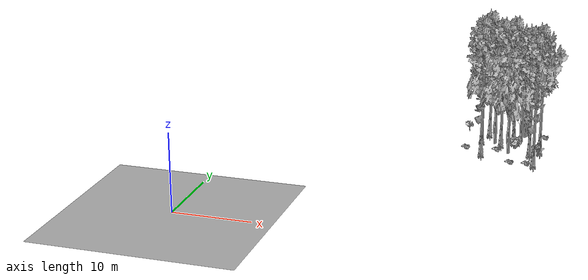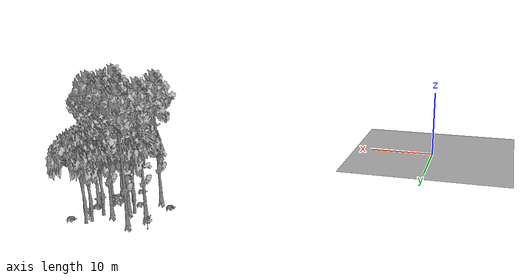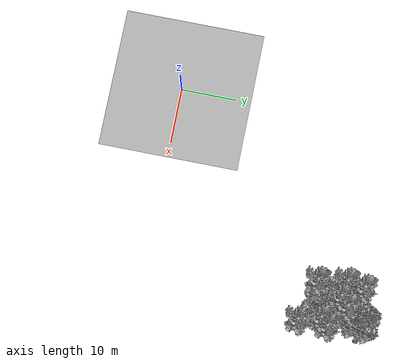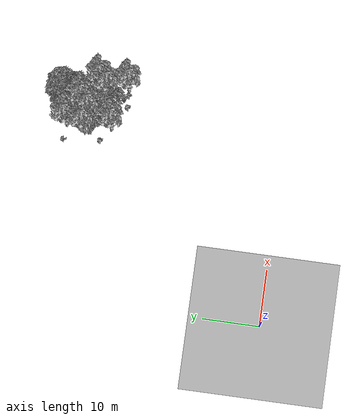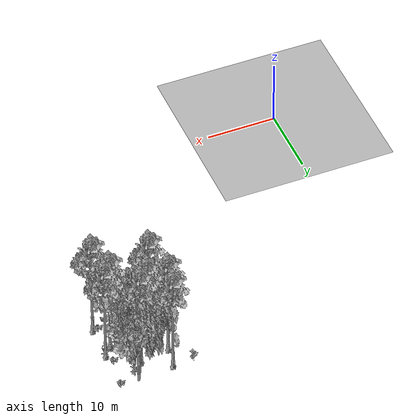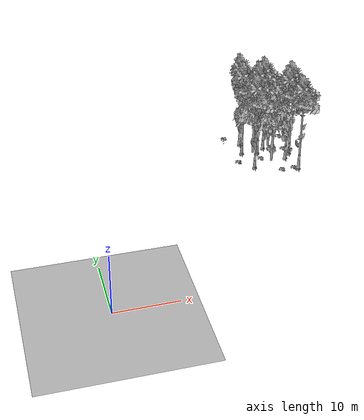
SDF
<sdf version="1.7">
 <world name="default">
  <model name="ground_plane">
   <static>1</static>
   <link name="link">
    <collision name="collision">
     <pose>-50 0 0 0 -0 0</pose>
     <geometry><plane><normal>0 0 1</normal><size>80 80</size></plane></geometry>
     <surface><contact><ode><min_depth>0.01</min_depth><max_vel>0</max_vel></ode></contact></surface>
    </collision>
    <visual name="grass">
     <cast_shadows>0</cast_shadows>
     <geometry>
      <mesh>
       <scale>0.46714285714285714 0.46714285714285714 0.1</scale>
       <uri>file://grass_plane/meshes/grass_plane.dae</uri>
      </mesh>
     </geometry>
    </visual>
   </link>
  </model>
  <model name="Tree 87">
   <static>1</static>
   <pose>30.368040918640745 35.34969607959698 0 1.57079 -0 0</pose>
   <link name="link">
    <collision name="collision">
     <geometry><mesh><scale>3.5 5 3.5</scale><uri>model://tree_9/meshes/tree_9.obj</uri></mesh></geometry>
    </collision>
    <visual name="visual">
     <geometry><mesh><scale>3.5 5 3.5</scale><uri>model://tree_9/meshes/tree_9.obj</uri></mesh></geometry>
    </visual>
   </link>
  </model>
  <model name="Tree 98">
   <static>1</static>
   <pose>38.4714458404368 33.38023276302559 0 1.57079 -0 0</pose>
   <link name="link">
    <collision name="collision">
     <geometry><mesh><scale>3.5 5 3.5</scale><uri>model://tree_9/meshes/tree_9.obj</uri></mesh></geometry>
    </collision>
    <visual name="visual">
     <geometry><mesh><scale>3.5 5 3.5</scale><uri>model://tree_9/meshes/tree_9.obj</uri></mesh></geometry>
    </visual>
   </link>
  </model>
  <model name="Tree 213">
   <static>1</static>
   <pose>35.489186056349425 36.38401457643232 0 1.57079 -0 0</pose>
   <link name="link">
    <collision name="collision">
     <geometry><mesh><scale>3.5 5 3.5</scale><uri>model://tree_2/meshes/tree_2.obj</uri></mesh></geometry>
    </collision>
    <visual name="visual">
     <geometry><mesh><scale>3.5 5 3.5</scale><uri>model://tree_2/meshes/tree_2.obj</uri></mesh></geometry>
    </visual>
   </link>
  </model>
  <model name="Tree 239">
   <static>1</static>
   <pose>35.95722039083002 39.13831803263909 0 1.57079 -0 0</pose>
   <link name="link">
    <collision name="collision">
     <geometry><mesh><scale>3.5 5 3.5</scale><uri>model://tree_2/meshes/tree_2.obj</uri></mesh></geometry>
    </collision>
    <visual name="visual">
     <geometry><mesh><scale>3.5 5 3.5</scale><uri>model://tree_2/meshes/tree_2.obj</uri></mesh></geometry>
    </visual>
   </link>
  </model>
  <model name="Tree 249">
   <static>1</static>
   <pose>33.06455442588593 34.78855987814933 0 1.57079 -0 0</pose>
   <link name="link">
    <collision name="collision">
     <geometry><mesh><scale>3.5 5 3.5</scale><uri>model://tree_9/meshes/tree_9.obj</uri></mesh></geometry>
    </collision>
    <visual name="visual">
     <geometry><mesh><scale>3.5 5 3.5</scale><uri>model://tree_9/meshes/tree_9.obj</uri></mesh></geometry>
    </visual>
   </link>
  </model>
  <model name="Tree 257">
   <static>1</static>
   <pose>35.65585210140577 38.43721837925531 0 1.57079 -0 0</pose>
   <link name="link">
    <collision name="collision">
     <geometry><mesh><scale>3.5 5 3.5</scale><uri>model://tree_2/meshes/tree_2.obj</uri></mesh></geometry>
    </collision>
    <visual name="visual">
     <geometry><mesh><scale>3.5 5 3.5</scale><uri>model://tree_2/meshes/tree_2.obj</uri></mesh></geometry>
    </visual>
   </link>
  </model>
  <model name="Tree 302">
   <static>1</static>
   <pose>38.35449542266106 28.356233038755704 0 1.57079 -0 0</pose>
   <link name="link">
    <collision name="collision">
     <geometry><mesh><scale>3.5 5 3.5</scale><uri>model://tree_9/meshes/tree_9.obj</uri></mesh></geometry>
    </collision>
    <visual name="visual">
     <geometry><mesh><scale>3.5 5 3.5</scale><uri>model://tree_9/meshes/tree_9.obj</uri></mesh></geometry>
    </visual>
   </link>
  </model>
  <model name="Tree 338">
   <static>1</static>
   <pose>34.55332855661844 36.17476984507678 0 1.57079 -0 0</pose>
   <link name="link">
    <collision name="collision">
     <geometry><mesh><scale>3.5 5 3.5</scale><uri>model://tree_9/meshes/tree_9.obj</uri></mesh></geometry>
    </collision>
    <visual name="visual">
     <geometry><mesh><scale>3.5 5 3.5</scale><uri>model://tree_9/meshes/tree_9.obj</uri></mesh></geometry>
    </visual>
   </link>
  </model>
  <model name="Tree 351">
   <static>1</static>
   <pose>30.918724511556277 38.40200254358794 0 1.57079 -0 0</pose>
   <link name="link">
    <collision name="collision">
     <geometry><mesh><scale>3.5 5 3.5</scale><uri>model://tree_9/meshes/tree_9.obj</uri></mesh></geometry>
    </collision>
    <visual name="visual">
     <geometry><mesh><scale>3.5 5 3.5</scale><uri>model://tree_9/meshes/tree_9.obj</uri></mesh></geometry>
    </visual>
   </link>
  </model>
  <model name="Tree 431">
   <static>1</static>
   <pose>32.17540235979949 34.827665643565936 0 1.57079 -0 0</pose>
   <link name="link">
    <collision name="collision">
     <geometry><mesh><scale>3.5 5 3.5</scale><uri>model://tree_2/meshes/tree_2.obj</uri></mesh></geometry>
    </collision>
    <visual name="visual">
     <geometry><mesh><scale>3.5 5 3.5</scale><uri>model://tree_2/meshes/tree_2.obj</uri></mesh></geometry>
    </visual>
   </link>
  </model>
  <model name="Tree 460">
   <static>1</static>
   <pose>34.48433794181234 31.56748242356491 0 1.57079 -0 0</pose>
   <link name="link">
    <collision name="collision">
     <geometry><mesh><scale>3.5 5 3.5</scale><uri>model://tree_2/meshes/tree_2.obj</uri></mesh></geometry>
    </collision>
    <visual name="visual">
     <geometry><mesh><scale>3.5 5 3.5</scale><uri>model://tree_2/meshes/tree_2.obj</uri></mesh></geometry>
    </visual>
   </link>
  </model>
  <model name="Tree 543">
   <static>1</static>
   <pose>31.146203858330622 30.483840288132896 0 1.57079 -0 0</pose>
   <link name="link">
    <collision name="collision">
     <geometry><mesh><scale>3.5 5 3.5</scale><uri>model://tree_9/meshes/tree_9.obj</uri></mesh></geometry>
    </collision>
    <visual name="visual">
     <geometry><mesh><scale>3.5 5 3.5</scale><uri>model://tree_9/meshes/tree_9.obj</uri></mesh></geometry>
    </visual>
   </link>
  </model>
  <model name="Tree 573">
   <static>1</static>
   <pose>37.30428687828541 32.086871599508015 0 1.57079 -0 0</pose>
   <link name="link">
    <collision name="collision">
     <geometry><mesh><scale>3.5 5 3.5</scale><uri>model://tree_9/meshes/tree_9.obj</uri></mesh></geometry>
    </collision>
    <visual name="visual">
     <geometry><mesh><scale>3.5 5 3.5</scale><uri>model://tree_9/meshes/tree_9.obj</uri></mesh></geometry>
    </visual>
   </link>
  </model>
  <model name="Bush 19">
   <static>1</static>
   <pose>38.39829381335906 38.76903698004217 0 1.57079 -0 0</pose>
   <link name="link">
    <collision name="collision">
     <geometry><mesh><scale>2 2 2</scale><uri>model://bush_2/meshes/bush_2.obj</uri></mesh></geometry>
     <surface><contact><collide_without_contact>false</collide_without_contact></contact></surface>
    </collision>
    <visual name="visual">
     <geometry><mesh><scale>2 2 2</scale><uri>model://bush_2/meshes/bush_2.obj</uri></mesh></geometry>
    </visual>
   </link>
  </model>
  <model name="Bush 44">
   <static>1</static>
   <pose>38.30323316511486 32.959709430677535 0 1.57079 -0 0</pose>
   <link name="link">
    <collision name="collision">
     <geometry><mesh><scale>2 2 2</scale><uri>model://bush_4/meshes/bush_4.obj</uri></mesh></geometry>
     <surface><contact><collide_without_contact>false</collide_without_contact></contact></surface>
    </collision>
    <visual name="visual">
     <geometry><mesh><scale>2 2 2</scale><uri>model://bush_4/meshes/bush_4.obj</uri></mesh></geometry>
    </visual>
   </link>
  </model>
  <model name="Bush 82">
   <static>1</static>
   <pose>32.879753553174126 32.408208171635636 0 1.57079 -0 0</pose>
   <link name="link">
    <collision name="collision">
     <geometry><mesh><scale>2 2 2</scale><uri>model://bush_2/meshes/bush_2.obj</uri></mesh></geometry>
     <surface><contact><collide_without_contact>false</collide_without_contact></contact></surface>
    </collision>
    <visual name="visual">
     <geometry><mesh><scale>2 2 2</scale><uri>model://bush_2/meshes/bush_2.obj</uri></mesh></geometry>
    </visual>
   </link>
  </model>
  <model name="Bush 128">
   <static>1</static>
   <pose>35.228487024531304 33.39341917050136 0 1.57079 -0 0</pose>
   <link name="link">
    <collision name="collision">
     <geometry><mesh><scale>2 2 2</scale><uri>model://bush_1/meshes/bush_1.obj</uri></mesh></geometry>
     <surface><contact><collide_without_contact>false</collide_without_contact></contact></surface>
    </collision>
    <visual name="visual">
     <geometry><mesh><scale>2 2 2</scale><uri>model://bush_1/meshes/bush_1.obj</uri></mesh></geometry>
    </visual>
   </link>
  </model>
  <model name="Bush 143">
   <static>1</static>
   <pose>36.319100647381916 38.308449373416025 0 1.57079 -0 0</pose>
   <link name="link">
    <collision name="collision">
     <geometry><mesh><scale>2 2 2</scale><uri>model://bush_5/meshes/bush_5.obj</uri></mesh></geometry>
     <surface><contact><collide_without_contact>false</collide_without_contact></contact></surface>
    </collision>
    <visual name="visual">
     <geometry><mesh><scale>2 2 2</scale><uri>model://bush_5/meshes/bush_5.obj</uri></mesh></geometry>
    </visual>
   </link>
  </model>
  <model name="Bush 284">
   <static>1</static>
   <pose>37.4536955631862 28.278427566357763 0 1.57079 -0 0</pose>
   <link name="link">
    <collision name="collision">
     <geometry><mesh><scale>2 2 2</scale><uri>model://bush_2/meshes/bush_2.obj</uri></mesh></geometry>
     <surface><contact><collide_without_contact>false</collide_without_contact></contact></surface>
    </collision>
    <visual name="visual">
     <geometry><mesh><scale>2 2 2</scale><uri>model://bush_2/meshes/bush_2.obj</uri></mesh></geometry>
    </visual>
   </link>
  </model>
  <model name="Bush 407">
   <static>1</static>
   <pose>35.31546100096959 28.1910201172346 0 1.57079 -0 0</pose>
   <link name="link">
    <collision name="collision">
     <geometry><mesh><scale>2 2 2</scale><uri>model://bush_2/meshes/bush_2.obj</uri></mesh></geometry>
     <surface><contact><collide_without_contact>false</collide_without_contact></contact></surface>
    </collision>
    <visual name="visual">
     <geometry><mesh><scale>2 2 2</scale><uri>model://bush_2/meshes/bush_2.obj</uri></mesh></geometry>
    </visual>
   </link>
  </model>
  <model name="Bush 552">
   <static>1</static>
   <pose>28.801131798734517 32.22434727756384 0 1.57079 -0 0</pose>
   <link name="link">
    <collision name="collision">
     <geometry><mesh><scale>2 2 2</scale><uri>model://bush_2/meshes/bush_2.obj</uri></mesh></geometry>
     <surface><contact><collide_without_contact>false</collide_without_contact></contact></surface>
    </collision>
    <visual name="visual">
     <geometry><mesh><scale>2 2 2</scale><uri>model://bush_2/meshes/bush_2.obj</uri></mesh></geometry>
    </visual>
   </link>
  </model>
  <model name="Bush 577">
   <static>1</static>
   <pose>37.73882385184167 34.548927510907575 0 1.57079 -0 0</pose>
   <link name="link">
    <collision name="collision">
     <geometry><mesh><scale>2 2 2</scale><uri>model://bush_2/meshes/bush_2.obj</uri></mesh></geometry>
     <surface><contact><collide_without_contact>false</collide_without_contact></contact></surface>
    </collision>
    <visual name="visual">
     <geometry><mesh><scale>2 2 2</scale><uri>model://bush_2/meshes/bush_2.obj</uri></mesh></geometry>
    </visual>
   </link>
  </model>
  <model name="Bush 626">
   <static>1</static>
   <pose>28.090611618774417 38.745508097711564 0 1.57079 -0 0</pose>
   <link name="link">
    <collision name="collision">
     <geometry><mesh><scale>2 2 2</scale><uri>model://bush_5/meshes/bush_5.obj</uri></mesh></geometry>
     <surface><contact><collide_without_contact>false</collide_without_contact></contact></surface>
    </collision>
    <visual name="visual">
     <geometry><mesh><scale>2 2 2</scale><uri>model://bush_5/meshes/bush_5.obj</uri></mesh></geometry>
    </visual>
   </link>
  </model>
 </world>
</sdf>
